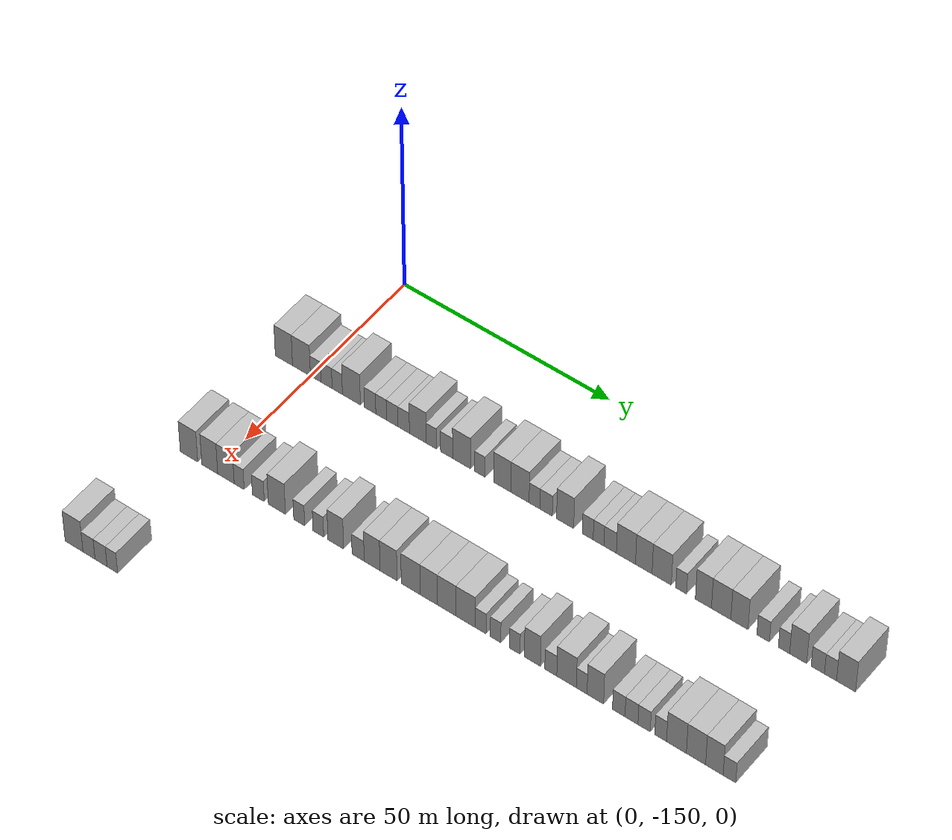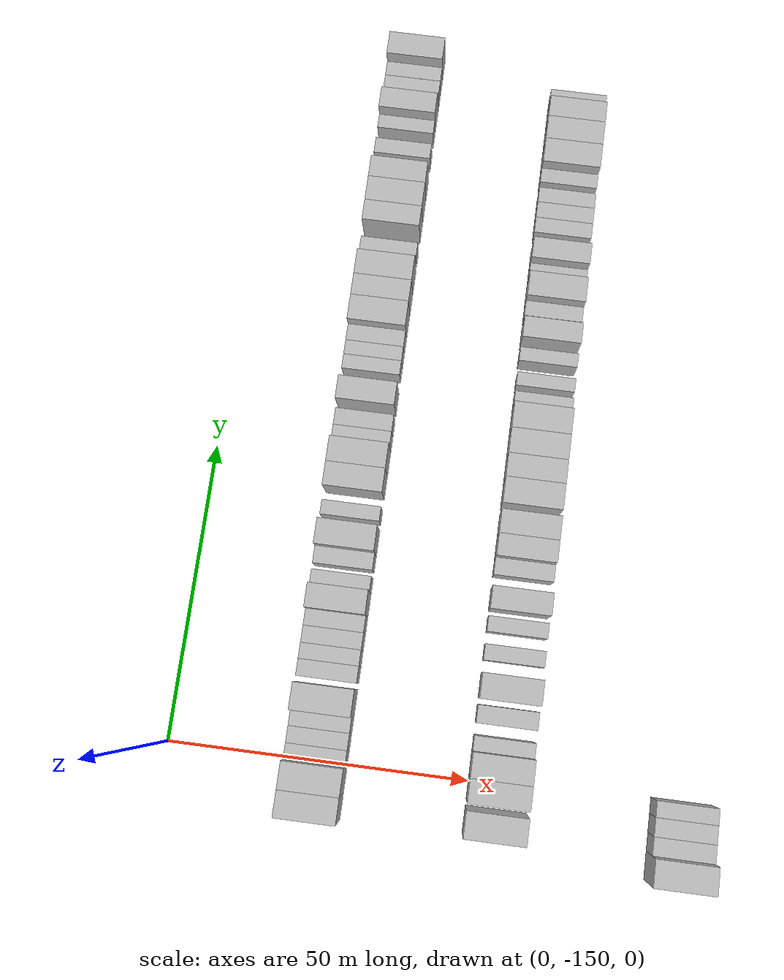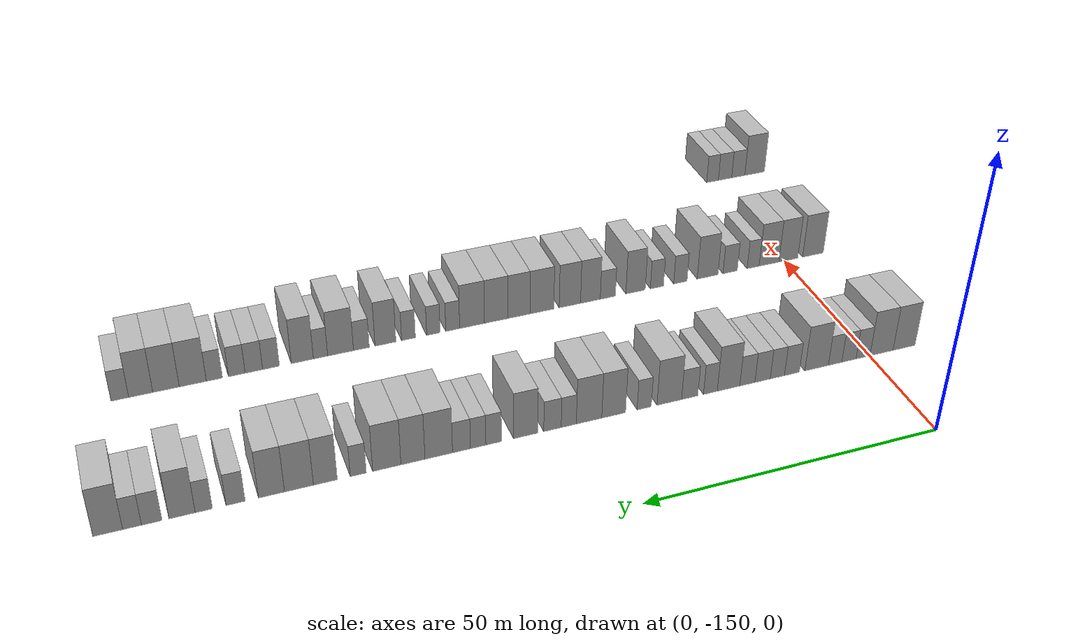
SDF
<sdf version="1.6">
 <world name="default">
  <model name="building_80">
   <static>1</static>
   <pose>25.0000 -156.6295 0 0.000000 0.000000 0.000000</pose>
   <link name="link">
    <pose>0 0 4.50 0 0 0</pose>
    <collision name="collision"><geometry><box><size>10.0000 4.2758 9.0000</size></box></geometry></collision>
    <visual name="visual">
     <cast_shadows>0</cast_shadows>
     <geometry><box><size>10.0000 4.2758 9.0000</size></box></geometry>
     <material>
      <script>
       <uri>model://HANNAS_wall/materials/scripts</uri>
       <uri>model://HANNAS_wall/materials/textures</uri>
       <name>vrc/HANNAS_wall</name>
      </script>
     </material>
    </visual>
   </link>
  </model>
  <model name="building_81">
   <static>1</static>
   <pose>25.0000 -152.2751 0 0.000000 0.000000 0.000000</pose>
   <link name="link">
    <pose>0 0 4.50 0 0 0</pose>
    <collision name="collision"><geometry><box><size>10.0000 4.4330 9.0000</size></box></geometry></collision>
    <visual name="visual">
     <cast_shadows>0</cast_shadows>
     <geometry><box><size>10.0000 4.4330 9.0000</size></box></geometry>
     <material>
      <script>
       <uri>model://HANNAS_wall/materials/scripts</uri>
       <uri>model://HANNAS_wall/materials/textures</uri>
       <name>vrc/HANNAS_wall</name>
      </script>
     </material>
    </visual>
   </link>
  </model>
  <model name="building_82">
   <static>1</static>
   <pose>25.0000 -148.7307 0 0.000000 0.000000 0.000000</pose>
   <link name="link">
    <pose>0 0 3.00 0 0 0</pose>
    <collision name="collision"><geometry><box><size>10.0000 2.6557 6.0000</size></box></geometry></collision>
    <visual name="visual">
     <cast_shadows>0</cast_shadows>
     <geometry><box><size>10.0000 2.6557 6.0000</size></box></geometry>
     <material>
      <script>
       <uri>model://HANNAS_wall/materials/scripts</uri>
       <uri>model://HANNAS_wall/materials/textures</uri>
       <name>vrc/HANNAS_wall</name>
      </script>
     </material>
    </visual>
   </link>
  </model>
  <model name="building_83">
   <static>1</static>
   <pose>25.0000 -146.0555 0 0.000000 0.000000 0.000000</pose>
   <link name="link">
    <pose>0 0 3.00 0 0 0</pose>
    <collision name="collision"><geometry><box><size>10.0000 2.6948 6.0000</size></box></geometry></collision>
    <visual name="visual">
     <cast_shadows>0</cast_shadows>
     <geometry><box><size>10.0000 2.6948 6.0000</size></box></geometry>
     <material>
      <script>
       <uri>model://HANNAS_wall/materials/scripts</uri>
       <uri>model://HANNAS_wall/materials/textures</uri>
       <name>vrc/HANNAS_wall</name>
      </script>
     </material>
    </visual>
   </link>
  </model>
  <model name="building_84">
   <static>1</static>
   <pose>25.0000 -143.4408 0 0.000000 0.000000 0.000000</pose>
   <link name="link">
    <pose>0 0 3.00 0 0 0</pose>
    <collision name="collision"><geometry><box><size>10.0000 2.5346 6.0000</size></box></geometry></collision>
    <visual name="visual">
     <cast_shadows>0</cast_shadows>
     <geometry><box><size>10.0000 2.5346 6.0000</size></box></geometry>
     <material>
      <script>
       <uri>model://HANNAS_wall/materials/scripts</uri>
       <uri>model://HANNAS_wall/materials/textures</uri>
       <name>vrc/HANNAS_wall</name>
      </script>
     </material>
    </visual>
   </link>
  </model>
  <model name="building_85">
   <static>1</static>
   <pose>25.0000 -139.9670 0 0.000000 0.000000 0.000000</pose>
   <link name="link">
    <pose>0 0 4.50 0 0 0</pose>
    <collision name="collision"><geometry><box><size>10.0000 4.4131 9.0000</size></box></geometry></collision>
    <visual name="visual">
     <cast_shadows>0</cast_shadows>
     <geometry><box><size>10.0000 4.4131 9.0000</size></box></geometry>
     <material>
      <script>
       <uri>model://HANNAS_wall/materials/scripts</uri>
       <uri>model://HANNAS_wall/materials/textures</uri>
       <name>vrc/HANNAS_wall</name>
      </script>
     </material>
    </visual>
   </link>
  </model>
  <model name="building_86">
   <static>1</static>
   <pose>25.0000 -135.3804 0 0.000000 0.000000 0.000000</pose>
   <link name="link">
    <pose>0 0 3.00 0 0 0</pose>
    <collision name="collision"><geometry><box><size>10.0000 2.7600 6.0000</size></box></geometry></collision>
    <visual name="visual">
     <cast_shadows>0</cast_shadows>
     <geometry><box><size>10.0000 2.7600 6.0000</size></box></geometry>
     <material>
      <script>
       <uri>model://HANNAS_wall/materials/scripts</uri>
       <uri>model://HANNAS_wall/materials/textures</uri>
       <name>vrc/HANNAS_wall</name>
      </script>
     </material>
    </visual>
   </link>
  </model>
  <model name="building_87">
   <static>1</static>
   <pose>25.0000 -132.6937 0 0.000000 0.000000 0.000000</pose>
   <link name="link">
    <pose>0 0 3.00 0 0 0</pose>
    <collision name="collision"><geometry><box><size>10.0000 2.6133 6.0000</size></box></geometry></collision>
    <visual name="visual">
     <cast_shadows>0</cast_shadows>
     <geometry><box><size>10.0000 2.6133 6.0000</size></box></geometry>
     <material>
      <script>
       <uri>model://HANNAS_wall/materials/scripts</uri>
       <uri>model://HANNAS_wall/materials/textures</uri>
       <name>vrc/HANNAS_wall</name>
      </script>
     </material>
    </visual>
   </link>
  </model>
  <model name="building_88">
   <static>1</static>
   <pose>25.0000 -129.9878 0 0.000000 0.000000 0.000000</pose>
   <link name="link">
    <pose>0 0 3.00 0 0 0</pose>
    <collision name="collision"><geometry><box><size>10.0000 2.7985 6.0000</size></box></geometry></collision>
    <visual name="visual">
     <cast_shadows>0</cast_shadows>
     <geometry><box><size>10.0000 2.7985 6.0000</size></box></geometry>
     <material>
      <script>
       <uri>model://HANNAS_wall/materials/scripts</uri>
       <uri>model://HANNAS_wall/materials/textures</uri>
       <name>vrc/HANNAS_wall</name>
      </script>
     </material>
    </visual>
   </link>
  </model>
  <model name="building_89">
   <static>1</static>
   <pose>25.0000 -127.2118 0 0.000000 0.000000 0.000000</pose>
   <link name="link">
    <pose>0 0 3.00 0 0 0</pose>
    <collision name="collision"><geometry><box><size>10.0000 2.7536 6.0000</size></box></geometry></collision>
    <visual name="visual">
     <cast_shadows>0</cast_shadows>
     <geometry><box><size>10.0000 2.7536 6.0000</size></box></geometry>
     <material>
      <script>
       <uri>model://HANNAS_wall/materials/scripts</uri>
       <uri>model://HANNAS_wall/materials/textures</uri>
       <name>vrc/HANNAS_wall</name>
      </script>
     </material>
    </visual>
   </link>
  </model>
  <model name="building_90">
   <static>1</static>
   <pose>25.0000 -123.8097 0 0.000000 0.000000 0.000000</pose>
   <link name="link">
    <pose>0 0 4.50 0 0 0</pose>
    <collision name="collision"><geometry><box><size>10.0000 4.0506 9.0000</size></box></geometry></collision>
    <visual name="visual">
     <cast_shadows>0</cast_shadows>
     <geometry><box><size>10.0000 4.0506 9.0000</size></box></geometry>
     <material>
      <script>
       <uri>model://HANNAS_wall/materials/scripts</uri>
       <uri>model://HANNAS_wall/materials/textures</uri>
       <name>vrc/HANNAS_wall</name>
      </script>
     </material>
    </visual>
   </link>
  </model>
  <model name="building_91">
   <static>1</static>
   <pose>25.0000 -120.5532 0 0.000000 0.000000 0.000000</pose>
   <link name="link">
    <pose>0 0 3.00 0 0 0</pose>
    <collision name="collision"><geometry><box><size>10.0000 2.4622 6.0000</size></box></geometry></collision>
    <visual name="visual">
     <cast_shadows>0</cast_shadows>
     <geometry><box><size>10.0000 2.4622 6.0000</size></box></geometry>
     <material>
      <script>
       <uri>model://HANNAS_wall/materials/scripts</uri>
       <uri>model://HANNAS_wall/materials/textures</uri>
       <name>vrc/HANNAS_wall</name>
      </script>
     </material>
    </visual>
   </link>
  </model>
  <model name="building_92">
   <static>1</static>
   <pose>25.0000 -116.8762 0 0.000000 0.000000 0.000000</pose>
   <link name="link">
    <pose>0 0 3.00 0 0 0</pose>
    <collision name="collision"><geometry><box><size>10.0000 2.8918 6.0000</size></box></geometry></collision>
    <visual name="visual">
     <cast_shadows>0</cast_shadows>
     <geometry><box><size>10.0000 2.8918 6.0000</size></box></geometry>
     <material>
      <script>
       <uri>model://HANNAS_wall/materials/scripts</uri>
       <uri>model://HANNAS_wall/materials/textures</uri>
       <name>vrc/HANNAS_wall</name>
      </script>
     </material>
    </visual>
   </link>
  </model>
  <model name="building_93">
   <static>1</static>
   <pose>25.0000 -113.2741 0 0.000000 0.000000 0.000000</pose>
   <link name="link">
    <pose>0 0 4.50 0 0 0</pose>
    <collision name="collision"><geometry><box><size>10.0000 4.3125 9.0000</size></box></geometry></collision>
    <visual name="visual">
     <cast_shadows>0</cast_shadows>
     <geometry><box><size>10.0000 4.3125 9.0000</size></box></geometry>
     <material>
      <script>
       <uri>model://HANNAS_wall/materials/scripts</uri>
       <uri>model://HANNAS_wall/materials/textures</uri>
       <name>vrc/HANNAS_wall</name>
      </script>
     </material>
    </visual>
   </link>
  </model>
  <model name="building_94">
   <static>1</static>
   <pose>25.0000 -108.8864 0 0.000000 0.000000 0.000000</pose>
   <link name="link">
    <pose>0 0 3.00 0 0 0</pose>
    <collision name="collision"><geometry><box><size>10.0000 2.4627 6.0000</size></box></geometry></collision>
    <visual name="visual">
     <cast_shadows>0</cast_shadows>
     <geometry><box><size>10.0000 2.4627 6.0000</size></box></geometry>
     <material>
      <script>
       <uri>model://HANNAS_wall/materials/scripts</uri>
       <uri>model://HANNAS_wall/materials/textures</uri>
       <name>vrc/HANNAS_wall</name>
      </script>
     </material>
    </visual>
   </link>
  </model>
  <model name="building_95">
   <static>1</static>
   <pose>25.0000 -103.6120 0 0.000000 0.000000 0.000000</pose>
   <link name="link">
    <pose>0 0 4.50 0 0 0</pose>
    <collision name="collision"><geometry><box><size>10.0000 4.0861 9.0000</size></box></geometry></collision>
    <visual name="visual">
     <cast_shadows>0</cast_shadows>
     <geometry><box><size>10.0000 4.0861 9.0000</size></box></geometry>
     <material>
      <script>
       <uri>model://HANNAS_wall/materials/scripts</uri>
       <uri>model://HANNAS_wall/materials/textures</uri>
       <name>vrc/HANNAS_wall</name>
      </script>
     </material>
    </visual>
   </link>
  </model>
  <model name="building_96">
   <static>1</static>
   <pose>25.0000 -99.4019 0 0.000000 0.000000 0.000000</pose>
   <link name="link">
    <pose>0 0 4.50 0 0 0</pose>
    <collision name="collision"><geometry><box><size>10.0000 4.3343 9.0000</size></box></geometry></collision>
    <visual name="visual">
     <cast_shadows>0</cast_shadows>
     <geometry><box><size>10.0000 4.3343 9.0000</size></box></geometry>
     <material>
      <script>
       <uri>model://HANNAS_wall/materials/scripts</uri>
       <uri>model://HANNAS_wall/materials/textures</uri>
       <name>vrc/HANNAS_wall</name>
      </script>
     </material>
    </visual>
   </link>
  </model>
  <model name="building_97">
   <static>1</static>
   <pose>25.0000 -95.9641 0 0.000000 0.000000 0.000000</pose>
   <link name="link">
    <pose>0 0 3.00 0 0 0</pose>
    <collision name="collision"><geometry><box><size>10.0000 2.5414 6.0000</size></box></geometry></collision>
    <visual name="visual">
     <cast_shadows>0</cast_shadows>
     <geometry><box><size>10.0000 2.5414 6.0000</size></box></geometry>
     <material>
      <script>
       <uri>model://HANNAS_wall/materials/scripts</uri>
       <uri>model://HANNAS_wall/materials/textures</uri>
       <name>vrc/HANNAS_wall</name>
      </script>
     </material>
    </visual>
   </link>
  </model>
  <model name="building_98">
   <static>1</static>
   <pose>25.0000 -93.2323 0 0.000000 0.000000 0.000000</pose>
   <link name="link">
    <pose>0 0 3.00 0 0 0</pose>
    <collision name="collision"><geometry><box><size>10.0000 2.9222 6.0000</size></box></geometry></collision>
    <visual name="visual">
     <cast_shadows>0</cast_shadows>
     <geometry><box><size>10.0000 2.9222 6.0000</size></box></geometry>
     <material>
      <script>
       <uri>model://HANNAS_wall/materials/scripts</uri>
       <uri>model://HANNAS_wall/materials/textures</uri>
       <name>vrc/HANNAS_wall</name>
      </script>
     </material>
    </visual>
   </link>
  </model>
  <model name="building_99">
   <static>1</static>
   <pose>25.0000 -88.7668 0 0.000000 0.000000 0.000000</pose>
   <link name="link">
    <pose>0 0 4.50 0 0 0</pose>
    <collision name="collision"><geometry><box><size>10.0000 4.0088 9.0000</size></box></geometry></collision>
    <visual name="visual">
     <cast_shadows>0</cast_shadows>
     <geometry><box><size>10.0000 4.0088 9.0000</size></box></geometry>
     <material>
      <script>
       <uri>model://HANNAS_wall/materials/scripts</uri>
       <uri>model://HANNAS_wall/materials/textures</uri>
       <name>vrc/HANNAS_wall</name>
      </script>
     </material>
    </visual>
   </link>
  </model>
  <model name="building_100">
   <static>1</static>
   <pose>25.0000 -83.4952 0 0.000000 0.000000 0.000000</pose>
   <link name="link">
    <pose>0 0 3.00 0 0 0</pose>
    <collision name="collision"><geometry><box><size>10.0000 2.5344 6.0000</size></box></geometry></collision>
    <visual name="visual">
     <cast_shadows>0</cast_shadows>
     <geometry><box><size>10.0000 2.5344 6.0000</size></box></geometry>
     <material>
      <script>
       <uri>model://HANNAS_wall/materials/scripts</uri>
       <uri>model://HANNAS_wall/materials/textures</uri>
       <name>vrc/HANNAS_wall</name>
      </script>
     </material>
    </visual>
   </link>
  </model>
  <model name="building_101">
   <static>1</static>
   <pose>25.0000 -80.9715 0 0.000000 0.000000 0.000000</pose>
   <link name="link">
    <pose>0 0 3.00 0 0 0</pose>
    <collision name="collision"><geometry><box><size>10.0000 2.5129 6.0000</size></box></geometry></collision>
    <visual name="visual">
     <cast_shadows>0</cast_shadows>
     <geometry><box><size>10.0000 2.5129 6.0000</size></box></geometry>
     <material>
      <script>
       <uri>model://HANNAS_wall/materials/scripts</uri>
       <uri>model://HANNAS_wall/materials/textures</uri>
       <name>vrc/HANNAS_wall</name>
      </script>
     </material>
    </visual>
   </link>
  </model>
  <model name="building_102">
   <static>1</static>
   <pose>25.0000 -78.2710 0 0.000000 0.000000 0.000000</pose>
   <link name="link">
    <pose>0 0 3.00 0 0 0</pose>
    <collision name="collision"><geometry><box><size>10.0000 2.8881 6.0000</size></box></geometry></collision>
    <visual name="visual">
     <cast_shadows>0</cast_shadows>
     <geometry><box><size>10.0000 2.8881 6.0000</size></box></geometry>
     <material>
      <script>
       <uri>model://HANNAS_wall/materials/scripts</uri>
       <uri>model://HANNAS_wall/materials/textures</uri>
       <name>vrc/HANNAS_wall</name>
      </script>
     </material>
    </visual>
   </link>
  </model>
  <model name="building_103">
   <static>1</static>
   <pose>25.0000 -74.6252 0 0.000000 0.000000 0.000000</pose>
   <link name="link">
    <pose>0 0 4.50 0 0 0</pose>
    <collision name="collision"><geometry><box><size>10.0000 4.4037 9.0000</size></box></geometry></collision>
    <visual name="visual">
     <cast_shadows>0</cast_shadows>
     <geometry><box><size>10.0000 4.4037 9.0000</size></box></geometry>
     <material>
      <script>
       <uri>model://HANNAS_wall/materials/scripts</uri>
       <uri>model://HANNAS_wall/materials/textures</uri>
       <name>vrc/HANNAS_wall</name>
      </script>
     </material>
    </visual>
   </link>
  </model>
  <model name="building_104">
   <static>1</static>
   <pose>25.0000 -70.5208 0 0.000000 0.000000 0.000000</pose>
   <link name="link">
    <pose>0 0 4.50 0 0 0</pose>
    <collision name="collision"><geometry><box><size>10.0000 3.8050 9.0000</size></box></geometry></collision>
    <visual name="visual">
     <cast_shadows>0</cast_shadows>
     <geometry><box><size>10.0000 3.8050 9.0000</size></box></geometry>
     <material>
      <script>
       <uri>model://HANNAS_wall/materials/scripts</uri>
       <uri>model://HANNAS_wall/materials/textures</uri>
       <name>vrc/HANNAS_wall</name>
      </script>
     </material>
    </visual>
   </link>
  </model>
  <model name="building_105">
   <static>1</static>
   <pose>25.0000 -66.4033 0 0.000000 0.000000 0.000000</pose>
   <link name="link">
    <pose>0 0 4.50 0 0 0</pose>
    <collision name="collision"><geometry><box><size>10.0000 4.4301 9.0000</size></box></geometry></collision>
    <visual name="visual">
     <cast_shadows>0</cast_shadows>
     <geometry><box><size>10.0000 4.4301 9.0000</size></box></geometry>
     <material>
      <script>
       <uri>model://HANNAS_wall/materials/scripts</uri>
       <uri>model://HANNAS_wall/materials/textures</uri>
       <name>vrc/HANNAS_wall</name>
      </script>
     </material>
    </visual>
   </link>
  </model>
  <model name="building_106">
   <static>1</static>
   <pose>25.0000 -61.9456 0 0.000000 0.000000 0.000000</pose>
   <link name="link">
    <pose>0 0 3.00 0 0 0</pose>
    <collision name="collision"><geometry><box><size>10.0000 2.4852 6.0000</size></box></geometry></collision>
    <visual name="visual">
     <cast_shadows>0</cast_shadows>
     <geometry><box><size>10.0000 2.4852 6.0000</size></box></geometry>
     <material>
      <script>
       <uri>model://HANNAS_wall/materials/scripts</uri>
       <uri>model://HANNAS_wall/materials/textures</uri>
       <name>vrc/HANNAS_wall</name>
      </script>
     </material>
    </visual>
   </link>
  </model>
  <model name="building_107">
   <static>1</static>
   <pose>25.0000 -56.8765 0 0.000000 0.000000 0.000000</pose>
   <link name="link">
    <pose>0 0 4.50 0 0 0</pose>
    <collision name="collision"><geometry><box><size>10.0000 3.6530 9.0000</size></box></geometry></collision>
    <visual name="visual">
     <cast_shadows>0</cast_shadows>
     <geometry><box><size>10.0000 3.6530 9.0000</size></box></geometry>
     <material>
      <script>
       <uri>model://HANNAS_wall/materials/scripts</uri>
       <uri>model://HANNAS_wall/materials/textures</uri>
       <name>vrc/HANNAS_wall</name>
      </script>
     </material>
    </visual>
   </link>
  </model>
  <model name="building_108">
   <static>1</static>
   <pose>25.0000 -52.8551 0 0.000000 0.000000 0.000000</pose>
   <link name="link">
    <pose>0 0 4.50 0 0 0</pose>
    <collision name="collision"><geometry><box><size>10.0000 4.3898 9.0000</size></box></geometry></collision>
    <visual name="visual">
     <cast_shadows>0</cast_shadows>
     <geometry><box><size>10.0000 4.3898 9.0000</size></box></geometry>
     <material>
      <script>
       <uri>model://HANNAS_wall/materials/scripts</uri>
       <uri>model://HANNAS_wall/materials/textures</uri>
       <name>vrc/HANNAS_wall</name>
      </script>
     </material>
    </visual>
   </link>
  </model>
  <model name="building_109">
   <static>1</static>
   <pose>25.0000 -48.7190 0 0.000000 0.000000 0.000000</pose>
   <link name="link">
    <pose>0 0 4.50 0 0 0</pose>
    <collision name="collision"><geometry><box><size>10.0000 3.8825 9.0000</size></box></geometry></collision>
    <visual name="visual">
     <cast_shadows>0</cast_shadows>
     <geometry><box><size>10.0000 3.8825 9.0000</size></box></geometry>
     <material>
      <script>
       <uri>model://HANNAS_wall/materials/scripts</uri>
       <uri>model://HANNAS_wall/materials/textures</uri>
       <name>vrc/HANNAS_wall</name>
      </script>
     </material>
    </visual>
   </link>
  </model>
  <model name="building_110">
   <static>1</static>
   <pose>25.0000 -43.3701 0 0.000000 0.000000 0.000000</pose>
   <link name="link">
    <pose>0 0 3.00 0 0 0</pose>
    <collision name="collision"><geometry><box><size>10.0000 2.8153 6.0000</size></box></geometry></collision>
    <visual name="visual">
     <cast_shadows>0</cast_shadows>
     <geometry><box><size>10.0000 2.8153 6.0000</size></box></geometry>
     <material>
      <script>
       <uri>model://HANNAS_wall/materials/scripts</uri>
       <uri>model://HANNAS_wall/materials/textures</uri>
       <name>vrc/HANNAS_wall</name>
      </script>
     </material>
    </visual>
   </link>
  </model>
  <model name="building_111">
   <static>1</static>
   <pose>25.0000 -38.7007 0 0.000000 0.000000 0.000000</pose>
   <link name="link">
    <pose>0 0 3.00 0 0 0</pose>
    <collision name="collision"><geometry><box><size>10.0000 2.5234 6.0000</size></box></geometry></collision>
    <visual name="visual">
     <cast_shadows>0</cast_shadows>
     <geometry><box><size>10.0000 2.5234 6.0000</size></box></geometry>
     <material>
      <script>
       <uri>model://HANNAS_wall/materials/scripts</uri>
       <uri>model://HANNAS_wall/materials/textures</uri>
       <name>vrc/HANNAS_wall</name>
      </script>
     </material>
    </visual>
   </link>
  </model>
  <model name="building_112">
   <static>1</static>
   <pose>25.0000 -35.5379 0 0.000000 0.000000 0.000000</pose>
   <link name="link">
    <pose>0 0 4.50 0 0 0</pose>
    <collision name="collision"><geometry><box><size>10.0000 3.8022 9.0000</size></box></geometry></collision>
    <visual name="visual">
     <cast_shadows>0</cast_shadows>
     <geometry><box><size>10.0000 3.8022 9.0000</size></box></geometry>
     <material>
      <script>
       <uri>model://HANNAS_wall/materials/scripts</uri>
       <uri>model://HANNAS_wall/materials/textures</uri>
       <name>vrc/HANNAS_wall</name>
      </script>
     </material>
    </visual>
   </link>
  </model>
  <model name="building_113">
   <static>1</static>
   <pose>25.0000 -31.1685 0 0.000000 0.000000 0.000000</pose>
   <link name="link">
    <pose>0 0 3.00 0 0 0</pose>
    <collision name="collision"><geometry><box><size>10.0000 2.9366 6.0000</size></box></geometry></collision>
    <visual name="visual">
     <cast_shadows>0</cast_shadows>
     <geometry><box><size>10.0000 2.9366 6.0000</size></box></geometry>
     <material>
      <script>
       <uri>model://HANNAS_wall/materials/scripts</uri>
       <uri>model://HANNAS_wall/materials/textures</uri>
       <name>vrc/HANNAS_wall</name>
      </script>
     </material>
    </visual>
   </link>
  </model>
  <model name="building_114">
   <static>1</static>
   <pose>25.0000 -28.3616 0 0.000000 0.000000 0.000000</pose>
   <link name="link">
    <pose>0 0 3.00 0 0 0</pose>
    <collision name="collision"><geometry><box><size>10.0000 2.6771 6.0000</size></box></geometry></collision>
    <visual name="visual">
     <cast_shadows>0</cast_shadows>
     <geometry><box><size>10.0000 2.6771 6.0000</size></box></geometry>
     <material>
      <script>
       <uri>model://HANNAS_wall/materials/scripts</uri>
       <uri>model://HANNAS_wall/materials/textures</uri>
       <name>vrc/HANNAS_wall</name>
      </script>
     </material>
    </visual>
   </link>
  </model>
  <model name="building_115">
   <static>1</static>
   <pose>25.0000 -24.9196 0 0.000000 0.000000 0.000000</pose>
   <link name="link">
    <pose>0 0 4.50 0 0 0</pose>
    <collision name="collision"><geometry><box><size>10.0000 4.2070 9.0000</size></box></geometry></collision>
    <visual name="visual">
     <cast_shadows>0</cast_shadows>
     <geometry><box><size>10.0000 4.2070 9.0000</size></box></geometry>
     <material>
      <script>
       <uri>model://HANNAS_wall/materials/scripts</uri>
       <uri>model://HANNAS_wall/materials/textures</uri>
       <name>vrc/HANNAS_wall</name>
      </script>
     </material>
    </visual>
   </link>
  </model>
  <model name="building_296">
   <static>1</static>
   <pose>55.0000 -155.9670 0 0.000000 0.000000 0.000000</pose>
   <link name="link">
    <pose>0 0 4.50 0 0 0</pose>
    <collision name="collision"><geometry><box><size>10.0000 4.3070 9.0000</size></box></geometry></collision>
    <visual name="visual">
     <cast_shadows>0</cast_shadows>
     <geometry><box><size>10.0000 4.3070 9.0000</size></box></geometry>
     <material>
      <script>
       <uri>model://HANNAS_wall/materials/scripts</uri>
       <uri>model://HANNAS_wall/materials/textures</uri>
       <name>vrc/HANNAS_wall</name>
      </script>
     </material>
    </visual>
   </link>
  </model>
  <model name="building_297">
   <static>1</static>
   <pose>55.0000 -150.8614 0 0.000000 0.000000 0.000000</pose>
   <link name="link">
    <pose>0 0 4.50 0 0 0</pose>
    <collision name="collision"><geometry><box><size>10.0000 3.9041 9.0000</size></box></geometry></collision>
    <visual name="visual">
     <cast_shadows>0</cast_shadows>
     <geometry><box><size>10.0000 3.9041 9.0000</size></box></geometry>
     <material>
      <script>
       <uri>model://HANNAS_wall/materials/scripts</uri>
       <uri>model://HANNAS_wall/materials/textures</uri>
       <name>vrc/HANNAS_wall</name>
      </script>
     </material>
    </visual>
   </link>
  </model>
  <model name="building_298">
   <static>1</static>
   <pose>55.0000 -146.8878 0 0.000000 0.000000 0.000000</pose>
   <link name="link">
    <pose>0 0 4.50 0 0 0</pose>
    <collision name="collision"><geometry><box><size>10.0000 4.0431 9.0000</size></box></geometry></collision>
    <visual name="visual">
     <cast_shadows>0</cast_shadows>
     <geometry><box><size>10.0000 4.0431 9.0000</size></box></geometry>
     <material>
      <script>
       <uri>model://HANNAS_wall/materials/scripts</uri>
       <uri>model://HANNAS_wall/materials/textures</uri>
       <name>vrc/HANNAS_wall</name>
      </script>
     </material>
    </visual>
   </link>
  </model>
  <model name="building_299">
   <static>1</static>
   <pose>55.0000 -143.6526 0 0.000000 0.000000 0.000000</pose>
   <link name="link">
    <pose>0 0 3.00 0 0 0</pose>
    <collision name="collision"><geometry><box><size>10.0000 2.4274 6.0000</size></box></geometry></collision>
    <visual name="visual">
     <cast_shadows>0</cast_shadows>
     <geometry><box><size>10.0000 2.4274 6.0000</size></box></geometry>
     <material>
      <script>
       <uri>model://HANNAS_wall/materials/scripts</uri>
       <uri>model://HANNAS_wall/materials/textures</uri>
       <name>vrc/HANNAS_wall</name>
      </script>
     </material>
    </visual>
   </link>
  </model>
  <model name="building_300">
   <static>1</static>
   <pose>55.0000 -138.9962 0 0.000000 0.000000 0.000000</pose>
   <link name="link">
    <pose>0 0 3.00 0 0 0</pose>
    <collision name="collision"><geometry><box><size>10.0000 2.8854 6.0000</size></box></geometry></collision>
    <visual name="visual">
     <cast_shadows>0</cast_shadows>
     <geometry><box><size>10.0000 2.8854 6.0000</size></box></geometry>
     <material>
      <script>
       <uri>model://HANNAS_wall/materials/scripts</uri>
       <uri>model://HANNAS_wall/materials/textures</uri>
       <name>vrc/HANNAS_wall</name>
      </script>
     </material>
    </visual>
   </link>
  </model>
  <model name="building_301">
   <static>1</static>
   <pose>55.0000 -134.4829 0 0.000000 0.000000 0.000000</pose>
   <link name="link">
    <pose>0 0 4.50 0 0 0</pose>
    <collision name="collision"><geometry><box><size>10.0000 4.1412 9.0000</size></box></geometry></collision>
    <visual name="visual">
     <cast_shadows>0</cast_shadows>
     <geometry><box><size>10.0000 4.1412 9.0000</size></box></geometry>
     <material>
      <script>
       <uri>model://HANNAS_wall/materials/scripts</uri>
       <uri>model://HANNAS_wall/materials/textures</uri>
       <name>vrc/HANNAS_wall</name>
      </script>
     </material>
    </visual>
   </link>
  </model>
  <model name="building_302">
   <static>1</static>
   <pose>55.0000 -129.0919 0 0.000000 0.000000 0.000000</pose>
   <link name="link">
    <pose>0 0 3.00 0 0 0</pose>
    <collision name="collision"><geometry><box><size>10.0000 2.6408 6.0000</size></box></geometry></collision>
    <visual name="visual">
     <cast_shadows>0</cast_shadows>
     <geometry><box><size>10.0000 2.6408 6.0000</size></box></geometry>
     <material>
      <script>
       <uri>model://HANNAS_wall/materials/scripts</uri>
       <uri>model://HANNAS_wall/materials/textures</uri>
       <name>vrc/HANNAS_wall</name>
      </script>
     </material>
    </visual>
   </link>
  </model>
  <model name="building_303">
   <static>1</static>
   <pose>55.0000 -124.4853 0 0.000000 0.000000 0.000000</pose>
   <link name="link">
    <pose>0 0 3.00 0 0 0</pose>
    <collision name="collision"><geometry><box><size>10.0000 2.5724 6.0000</size></box></geometry></collision>
    <visual name="visual">
     <cast_shadows>0</cast_shadows>
     <geometry><box><size>10.0000 2.5724 6.0000</size></box></geometry>
     <material>
      <script>
       <uri>model://HANNAS_wall/materials/scripts</uri>
       <uri>model://HANNAS_wall/materials/textures</uri>
       <name>vrc/HANNAS_wall</name>
      </script>
     </material>
    </visual>
   </link>
  </model>
  <model name="building_304">
   <static>1</static>
   <pose>55.0000 -120.3214 0 0.000000 0.000000 0.000000</pose>
   <link name="link">
    <pose>0 0 4.50 0 0 0</pose>
    <collision name="collision"><geometry><box><size>10.0000 3.7555 9.0000</size></box></geometry></collision>
    <visual name="visual">
     <cast_shadows>0</cast_shadows>
     <geometry><box><size>10.0000 3.7555 9.0000</size></box></geometry>
     <material>
      <script>
       <uri>model://HANNAS_wall/materials/scripts</uri>
       <uri>model://HANNAS_wall/materials/textures</uri>
       <name>vrc/HANNAS_wall</name>
      </script>
     </material>
    </visual>
   </link>
  </model>
  <model name="building_305">
   <static>1</static>
   <pose>55.0000 -114.9962 0 0.000000 0.000000 0.000000</pose>
   <link name="link">
    <pose>0 0 3.00 0 0 0</pose>
    <collision name="collision"><geometry><box><size>10.0000 2.8951 6.0000</size></box></geometry></collision>
    <visual name="visual">
     <cast_shadows>0</cast_shadows>
     <geometry><box><size>10.0000 2.8951 6.0000</size></box></geometry>
     <material>
      <script>
       <uri>model://HANNAS_wall/materials/scripts</uri>
       <uri>model://HANNAS_wall/materials/textures</uri>
       <name>vrc/HANNAS_wall</name>
      </script>
     </material>
    </visual>
   </link>
  </model>
  <model name="building_306">
   <static>1</static>
   <pose>55.0000 -111.6747 0 0.000000 0.000000 0.000000</pose>
   <link name="link">
    <pose>0 0 4.50 0 0 0</pose>
    <collision name="collision"><geometry><box><size>10.0000 3.7479 9.0000</size></box></geometry></collision>
    <visual name="visual">
     <cast_shadows>0</cast_shadows>
     <geometry><box><size>10.0000 3.7479 9.0000</size></box></geometry>
     <material>
      <script>
       <uri>model://HANNAS_wall/materials/scripts</uri>
       <uri>model://HANNAS_wall/materials/textures</uri>
       <name>vrc/HANNAS_wall</name>
      </script>
     </material>
    </visual>
   </link>
  </model>
  <model name="building_307">
   <static>1</static>
   <pose>55.0000 -107.7879 0 0.000000 0.000000 0.000000</pose>
   <link name="link">
    <pose>0 0 4.50 0 0 0</pose>
    <collision name="collision"><geometry><box><size>10.0000 4.0256 9.0000</size></box></geometry></collision>
    <visual name="visual">
     <cast_shadows>0</cast_shadows>
     <geometry><box><size>10.0000 4.0256 9.0000</size></box></geometry>
     <material>
      <script>
       <uri>model://HANNAS_wall/materials/scripts</uri>
       <uri>model://HANNAS_wall/materials/textures</uri>
       <name>vrc/HANNAS_wall</name>
      </script>
     </material>
    </visual>
   </link>
  </model>
  <model name="building_308">
   <static>1</static>
   <pose>55.0000 -102.5588 0 0.000000 0.000000 0.000000</pose>
   <link name="link">
    <pose>0 0 4.50 0 0 0</pose>
    <collision name="collision"><geometry><box><size>10.0000 4.4326 9.0000</size></box></geometry></collision>
    <visual name="visual">
     <cast_shadows>0</cast_shadows>
     <geometry><box><size>10.0000 4.4326 9.0000</size></box></geometry>
     <material>
      <script>
       <uri>model://HANNAS_wall/materials/scripts</uri>
       <uri>model://HANNAS_wall/materials/textures</uri>
       <name>vrc/HANNAS_wall</name>
      </script>
     </material>
    </visual>
   </link>
  </model>
  <model name="building_309">
   <static>1</static>
   <pose>55.0000 -98.3231 0 0.000000 0.000000 0.000000</pose>
   <link name="link">
    <pose>0 0 4.50 0 0 0</pose>
    <collision name="collision"><geometry><box><size>10.0000 4.0389 9.0000</size></box></geometry></collision>
    <visual name="visual">
     <cast_shadows>0</cast_shadows>
     <geometry><box><size>10.0000 4.0389 9.0000</size></box></geometry>
     <material>
      <script>
       <uri>model://HANNAS_wall/materials/scripts</uri>
       <uri>model://HANNAS_wall/materials/textures</uri>
       <name>vrc/HANNAS_wall</name>
      </script>
     </material>
    </visual>
   </link>
  </model>
  <model name="building_310">
   <static>1</static>
   <pose>55.0000 -94.1350 0 0.000000 0.000000 0.000000</pose>
   <link name="link">
    <pose>0 0 4.50 0 0 0</pose>
    <collision name="collision"><geometry><box><size>10.0000 4.3374 9.0000</size></box></geometry></collision>
    <visual name="visual">
     <cast_shadows>0</cast_shadows>
     <geometry><box><size>10.0000 4.3374 9.0000</size></box></geometry>
     <material>
      <script>
       <uri>model://HANNAS_wall/materials/scripts</uri>
       <uri>model://HANNAS_wall/materials/textures</uri>
       <name>vrc/HANNAS_wall</name>
      </script>
     </material>
    </visual>
   </link>
  </model>
  <model name="building_311">
   <static>1</static>
   <pose>55.0000 -89.7199 0 0.000000 0.000000 0.000000</pose>
   <link name="link">
    <pose>0 0 4.50 0 0 0</pose>
    <collision name="collision"><geometry><box><size>10.0000 4.4928 9.0000</size></box></geometry></collision>
    <visual name="visual">
     <cast_shadows>0</cast_shadows>
     <geometry><box><size>10.0000 4.4928 9.0000</size></box></geometry>
     <material>
      <script>
       <uri>model://HANNAS_wall/materials/scripts</uri>
       <uri>model://HANNAS_wall/materials/textures</uri>
       <name>vrc/HANNAS_wall</name>
      </script>
     </material>
    </visual>
   </link>
  </model>
  <model name="building_312">
   <static>1</static>
   <pose>55.0000 -86.2238 0 0.000000 0.000000 0.000000</pose>
   <link name="link">
    <pose>0 0 3.00 0 0 0</pose>
    <collision name="collision"><geometry><box><size>10.0000 2.4995 6.0000</size></box></geometry></collision>
    <visual name="visual">
     <cast_shadows>0</cast_shadows>
     <geometry><box><size>10.0000 2.4995 6.0000</size></box></geometry>
     <material>
      <script>
       <uri>model://HANNAS_wall/materials/scripts</uri>
       <uri>model://HANNAS_wall/materials/textures</uri>
       <name>vrc/HANNAS_wall</name>
      </script>
     </material>
    </visual>
   </link>
  </model>
  <model name="building_313">
   <static>1</static>
   <pose>55.0000 -82.7727 0 0.000000 0.000000 0.000000</pose>
   <link name="link">
    <pose>0 0 3.00 0 0 0</pose>
    <collision name="collision"><geometry><box><size>10.0000 2.4026 6.0000</size></box></geometry></collision>
    <visual name="visual">
     <cast_shadows>0</cast_shadows>
     <geometry><box><size>10.0000 2.4026 6.0000</size></box></geometry>
     <material>
      <script>
       <uri>model://HANNAS_wall/materials/scripts</uri>
       <uri>model://HANNAS_wall/materials/textures</uri>
       <name>vrc/HANNAS_wall</name>
      </script>
     </material>
    </visual>
   </link>
  </model>
  <model name="building_314">
   <static>1</static>
   <pose>55.0000 -78.3517 0 0.000000 0.000000 0.000000</pose>
   <link name="link">
    <pose>0 0 3.00 0 0 0</pose>
    <collision name="collision"><geometry><box><size>10.0000 2.4395 6.0000</size></box></geometry></collision>
    <visual name="visual">
     <cast_shadows>0</cast_shadows>
     <geometry><box><size>10.0000 2.4395 6.0000</size></box></geometry>
     <material>
      <script>
       <uri>model://HANNAS_wall/materials/scripts</uri>
       <uri>model://HANNAS_wall/materials/textures</uri>
       <name>vrc/HANNAS_wall</name>
      </script>
     </material>
    </visual>
   </link>
  </model>
  <model name="building_315">
   <static>1</static>
   <pose>55.0000 -74.3050 0 0.000000 0.000000 0.000000</pose>
   <link name="link">
    <pose>0 0 4.50 0 0 0</pose>
    <collision name="collision"><geometry><box><size>10.0000 3.6538 9.0000</size></box></geometry></collision>
    <visual name="visual">
     <cast_shadows>0</cast_shadows>
     <geometry><box><size>10.0000 3.6538 9.0000</size></box></geometry>
     <material>
      <script>
       <uri>model://HANNAS_wall/materials/scripts</uri>
       <uri>model://HANNAS_wall/materials/textures</uri>
       <name>vrc/HANNAS_wall</name>
      </script>
     </material>
    </visual>
   </link>
  </model>
  <model name="building_316">
   <static>1</static>
   <pose>55.0000 -70.1078 0 0.000000 0.000000 0.000000</pose>
   <link name="link">
    <pose>0 0 3.00 0 0 0</pose>
    <collision name="collision"><geometry><box><size>10.0000 2.7407 6.0000</size></box></geometry></collision>
    <visual name="visual">
     <cast_shadows>0</cast_shadows>
     <geometry><box><size>10.0000 2.7407 6.0000</size></box></geometry>
     <material>
      <script>
       <uri>model://HANNAS_wall/materials/scripts</uri>
       <uri>model://HANNAS_wall/materials/textures</uri>
       <name>vrc/HANNAS_wall</name>
      </script>
     </material>
    </visual>
   </link>
  </model>
  <model name="building_317">
   <static>1</static>
   <pose>55.0000 -66.5190 0 0.000000 0.000000 0.000000</pose>
   <link name="link">
    <pose>0 0 4.50 0 0 0</pose>
    <collision name="collision"><geometry><box><size>10.0000 4.4369 9.0000</size></box></geometry></collision>
    <visual name="visual">
     <cast_shadows>0</cast_shadows>
     <geometry><box><size>10.0000 4.4369 9.0000</size></box></geometry>
     <material>
      <script>
       <uri>model://HANNAS_wall/materials/scripts</uri>
       <uri>model://HANNAS_wall/materials/textures</uri>
       <name>vrc/HANNAS_wall</name>
      </script>
     </material>
    </visual>
   </link>
  </model>
  <model name="building_318">
   <static>1</static>
   <pose>55.0000 -63.0810 0 0.000000 0.000000 0.000000</pose>
   <link name="link">
    <pose>0 0 3.00 0 0 0</pose>
    <collision name="collision"><geometry><box><size>10.0000 2.4392 6.0000</size></box></geometry></collision>
    <visual name="visual">
     <cast_shadows>0</cast_shadows>
     <geometry><box><size>10.0000 2.4392 6.0000</size></box></geometry>
     <material>
      <script>
       <uri>model://HANNAS_wall/materials/scripts</uri>
       <uri>model://HANNAS_wall/materials/textures</uri>
       <name>vrc/HANNAS_wall</name>
      </script>
     </material>
    </visual>
   </link>
  </model>
  <model name="building_319">
   <static>1</static>
   <pose>55.0000 -59.9904 0 0.000000 0.000000 0.000000</pose>
   <link name="link">
    <pose>0 0 4.50 0 0 0</pose>
    <collision name="collision"><geometry><box><size>10.0000 3.7420 9.0000</size></box></geometry></collision>
    <visual name="visual">
     <cast_shadows>0</cast_shadows>
     <geometry><box><size>10.0000 3.7420 9.0000</size></box></geometry>
     <material>
      <script>
       <uri>model://HANNAS_wall/materials/scripts</uri>
       <uri>model://HANNAS_wall/materials/textures</uri>
       <name>vrc/HANNAS_wall</name>
      </script>
     </material>
    </visual>
   </link>
  </model>
  <model name="building_320">
   <static>1</static>
   <pose>55.0000 -54.7105 0 0.000000 0.000000 0.000000</pose>
   <link name="link">
    <pose>0 0 3.00 0 0 0</pose>
    <collision name="collision"><geometry><box><size>10.0000 2.8180 6.0000</size></box></geometry></collision>
    <visual name="visual">
     <cast_shadows>0</cast_shadows>
     <geometry><box><size>10.0000 2.8180 6.0000</size></box></geometry>
     <material>
      <script>
       <uri>model://HANNAS_wall/materials/scripts</uri>
       <uri>model://HANNAS_wall/materials/textures</uri>
       <name>vrc/HANNAS_wall</name>
      </script>
     </material>
    </visual>
   </link>
  </model>
  <model name="building_321">
   <static>1</static>
   <pose>55.0000 -51.8466 0 0.000000 0.000000 0.000000</pose>
   <link name="link">
    <pose>0 0 3.00 0 0 0</pose>
    <collision name="collision"><geometry><box><size>10.0000 2.9098 6.0000</size></box></geometry></collision>
    <visual name="visual">
     <cast_shadows>0</cast_shadows>
     <geometry><box><size>10.0000 2.9098 6.0000</size></box></geometry>
     <material>
      <script>
       <uri>model://HANNAS_wall/materials/scripts</uri>
       <uri>model://HANNAS_wall/materials/textures</uri>
       <name>vrc/HANNAS_wall</name>
      </script>
     </material>
    </visual>
   </link>
  </model>
  <model name="building_322">
   <static>1</static>
   <pose>55.0000 -49.0181 0 0.000000 0.000000 0.000000</pose>
   <link name="link">
    <pose>0 0 3.00 0 0 0</pose>
    <collision name="collision"><geometry><box><size>10.0000 2.7473 6.0000</size></box></geometry></collision>
    <visual name="visual">
     <cast_shadows>0</cast_shadows>
     <geometry><box><size>10.0000 2.7473 6.0000</size></box></geometry>
     <material>
      <script>
       <uri>model://HANNAS_wall/materials/scripts</uri>
       <uri>model://HANNAS_wall/materials/textures</uri>
       <name>vrc/HANNAS_wall</name>
      </script>
     </material>
    </visual>
   </link>
  </model>
  <model name="building_323">
   <static>1</static>
   <pose>55.0000 -45.3291 0 0.000000 0.000000 0.000000</pose>
   <link name="link">
    <pose>0 0 3.00 0 0 0</pose>
    <collision name="collision"><geometry><box><size>10.0000 2.6306 6.0000</size></box></geometry></collision>
    <visual name="visual">
     <cast_shadows>0</cast_shadows>
     <geometry><box><size>10.0000 2.6306 6.0000</size></box></geometry>
     <material>
      <script>
       <uri>model://HANNAS_wall/materials/scripts</uri>
       <uri>model://HANNAS_wall/materials/textures</uri>
       <name>vrc/HANNAS_wall</name>
      </script>
     </material>
    </visual>
   </link>
  </model>
  <model name="building_324">
   <static>1</static>
   <pose>55.0000 -41.8105 0 0.000000 0.000000 0.000000</pose>
   <link name="link">
    <pose>0 0 4.50 0 0 0</pose>
    <collision name="collision"><geometry><box><size>10.0000 4.4067 9.0000</size></box></geometry></collision>
    <visual name="visual">
     <cast_shadows>0</cast_shadows>
     <geometry><box><size>10.0000 4.4067 9.0000</size></box></geometry>
     <material>
      <script>
       <uri>model://HANNAS_wall/materials/scripts</uri>
       <uri>model://HANNAS_wall/materials/textures</uri>
       <name>vrc/HANNAS_wall</name>
      </script>
     </material>
    </visual>
   </link>
  </model>
  <model name="building_325">
   <static>1</static>
   <pose>55.0000 -37.4768 0 0.000000 0.000000 0.000000</pose>
   <link name="link">
    <pose>0 0 4.50 0 0 0</pose>
    <collision name="collision"><geometry><box><size>10.0000 4.2606 9.0000</size></box></geometry></collision>
    <visual name="visual">
     <cast_shadows>0</cast_shadows>
     <geometry><box><size>10.0000 4.2606 9.0000</size></box></geometry>
     <material>
      <script>
       <uri>model://HANNAS_wall/materials/scripts</uri>
       <uri>model://HANNAS_wall/materials/textures</uri>
       <name>vrc/HANNAS_wall</name>
      </script>
     </material>
    </visual>
   </link>
  </model>
  <model name="building_326">
   <static>1</static>
   <pose>55.0000 -33.4207 0 0.000000 0.000000 0.000000</pose>
   <link name="link">
    <pose>0 0 4.50 0 0 0</pose>
    <collision name="collision"><geometry><box><size>10.0000 3.8517 9.0000</size></box></geometry></collision>
    <visual name="visual">
     <cast_shadows>0</cast_shadows>
     <geometry><box><size>10.0000 3.8517 9.0000</size></box></geometry>
     <material>
      <script>
       <uri>model://HANNAS_wall/materials/scripts</uri>
       <uri>model://HANNAS_wall/materials/textures</uri>
       <name>vrc/HANNAS_wall</name>
      </script>
     </material>
    </visual>
   </link>
  </model>
  <model name="building_327">
   <static>1</static>
   <pose>55.0000 -30.1011 0 0.000000 0.000000 0.000000</pose>
   <link name="link">
    <pose>0 0 3.00 0 0 0</pose>
    <collision name="collision"><geometry><box><size>10.0000 2.7874 6.0000</size></box></geometry></collision>
    <visual name="visual">
     <cast_shadows>0</cast_shadows>
     <geometry><box><size>10.0000 2.7874 6.0000</size></box></geometry>
     <material>
      <script>
       <uri>model://HANNAS_wall/materials/scripts</uri>
       <uri>model://HANNAS_wall/materials/textures</uri>
       <name>vrc/HANNAS_wall</name>
      </script>
     </material>
    </visual>
   </link>
  </model>
  <model name="building_515">
   <static>1</static>
   <pose>85.0000 -159.3837 0 0.000000 0.000000 0.000000</pose>
   <link name="link">
    <pose>0 0 4.50 0 0 0</pose>
    <collision name="collision"><geometry><box><size>10.0000 4.3785 9.0000</size></box></geometry></collision>
    <visual name="visual">
     <cast_shadows>0</cast_shadows>
     <geometry><box><size>10.0000 4.3785 9.0000</size></box></geometry>
     <material>
      <script>
       <uri>model://HANNAS_wall/materials/scripts</uri>
       <uri>model://HANNAS_wall/materials/textures</uri>
       <name>vrc/HANNAS_wall</name>
      </script>
     </material>
    </visual>
   </link>
  </model>
  <model name="building_516">
   <static>1</static>
   <pose>85.0000 -155.7214 0 0.000000 0.000000 0.000000</pose>
   <link name="link">
    <pose>0 0 3.00 0 0 0</pose>
    <collision name="collision"><geometry><box><size>10.0000 2.9461 6.0000</size></box></geometry></collision>
    <visual name="visual">
     <cast_shadows>0</cast_shadows>
     <geometry><box><size>10.0000 2.9461 6.0000</size></box></geometry>
     <material>
      <script>
       <uri>model://HANNAS_wall/materials/scripts</uri>
       <uri>model://HANNAS_wall/materials/textures</uri>
       <name>vrc/HANNAS_wall</name>
      </script>
     </material>
    </visual>
   </link>
  </model>
  <model name="building_517">
   <static>1</static>
   <pose>85.0000 -152.7734 0 0.000000 0.000000 0.000000</pose>
   <link name="link">
    <pose>0 0 3.00 0 0 0</pose>
    <collision name="collision"><geometry><box><size>10.0000 2.9499 6.0000</size></box></geometry></collision>
    <visual name="visual">
     <cast_shadows>0</cast_shadows>
     <geometry><box><size>10.0000 2.9499 6.0000</size></box></geometry>
     <material>
      <script>
       <uri>model://HANNAS_wall/materials/scripts</uri>
       <uri>model://HANNAS_wall/materials/textures</uri>
       <name>vrc/HANNAS_wall</name>
      </script>
     </material>
    </visual>
   </link>
  </model>
  <model name="building_518">
   <static>1</static>
   <pose>85.0000 -150.0087 0 0.000000 0.000000 0.000000</pose>
   <link name="link">
    <pose>0 0 3.00 0 0 0</pose>
    <collision name="collision"><geometry><box><size>10.0000 2.5796 6.0000</size></box></geometry></collision>
    <visual name="visual">
     <cast_shadows>0</cast_shadows>
     <geometry><box><size>10.0000 2.5796 6.0000</size></box></geometry>
     <material>
      <script>
       <uri>model://HANNAS_wall/materials/scripts</uri>
       <uri>model://HANNAS_wall/materials/textures</uri>
       <name>vrc/HANNAS_wall</name>
      </script>
     </material>
    </visual>
   </link>
  </model>
 </world>
</sdf>
